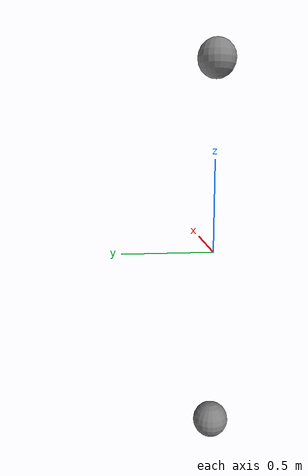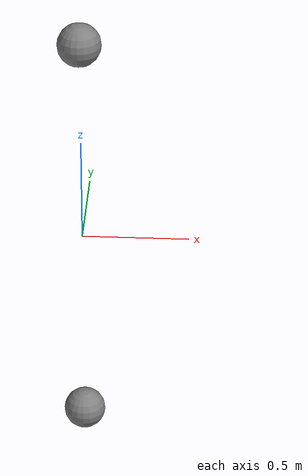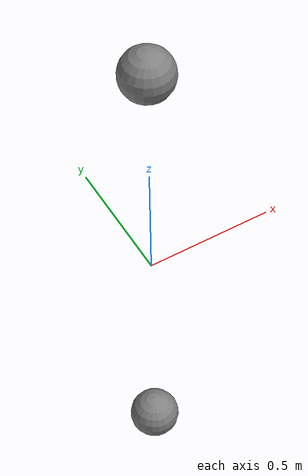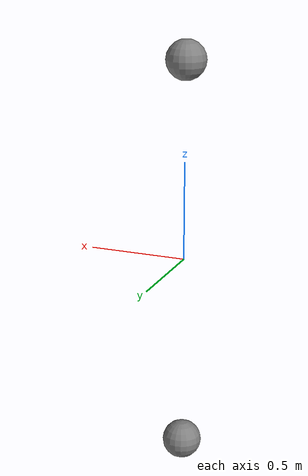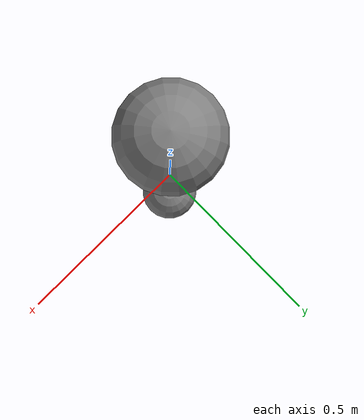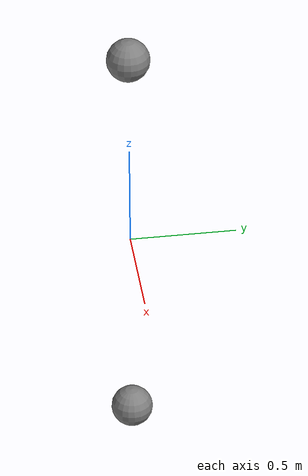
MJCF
<mujoco model="t10">
            <worldbody>
                <body name="b1" pos="0 0 1">
                    <joint type="free"/>
                    <geom name="g1" type="sphere" size="0.1" mass="1"/>
                    <site name="touch_site"/>
                </body>
                <body name="b2" pos="0 0 -1">
                    <joint type="free"/>
                    <geom name="g2" type="sphere" size="0.1" mass="1"/>
                </body>
            </worldbody>
            <sensor>
                <touch name="t" site="touch_site"/>
            </sensor>
        </mujoco>
